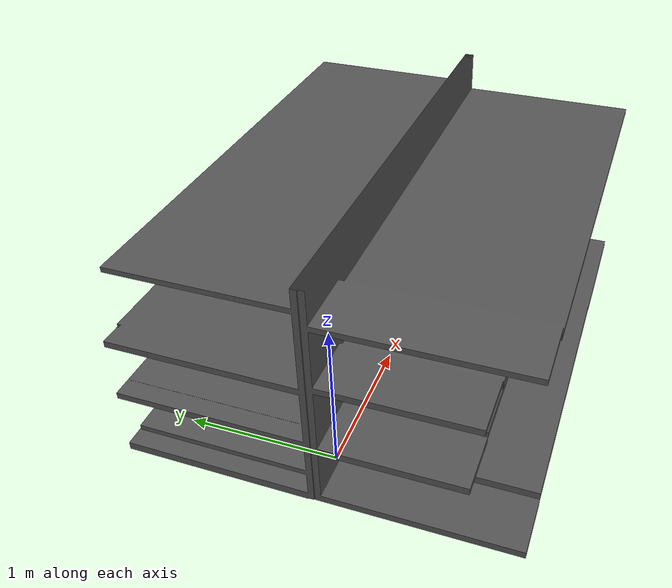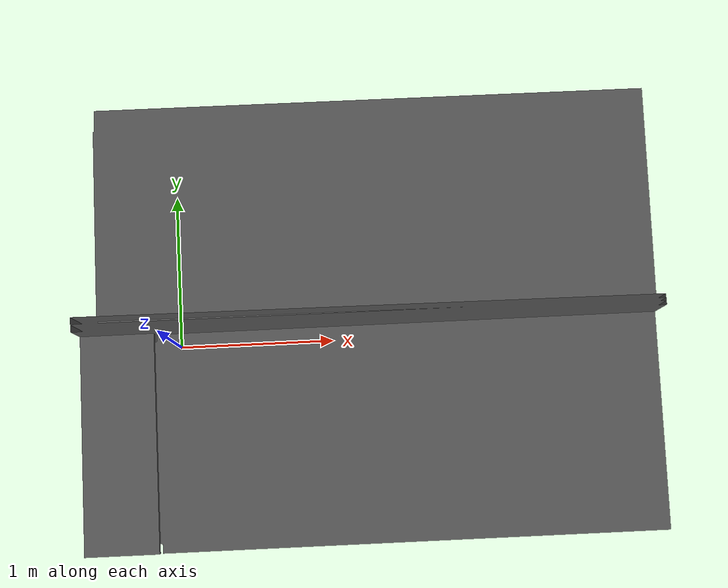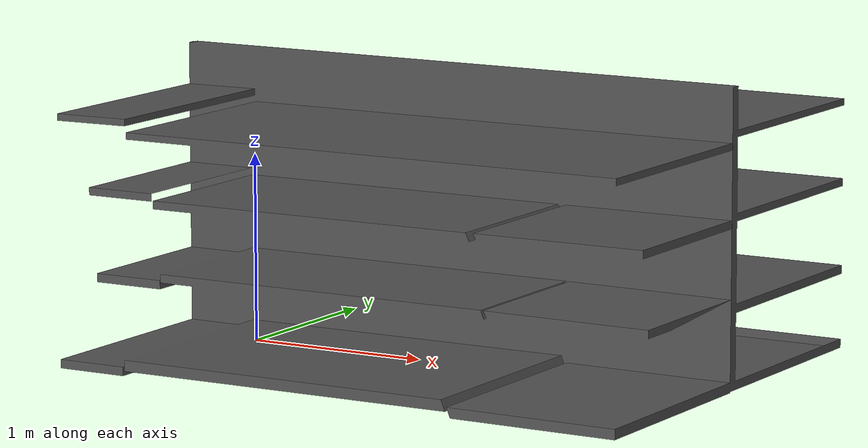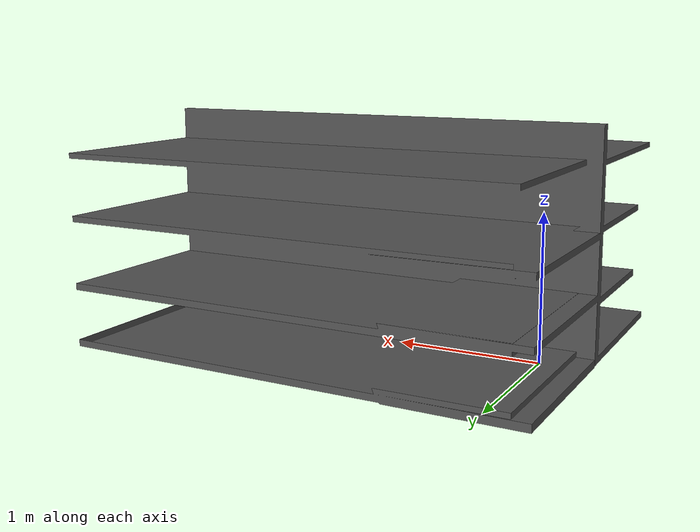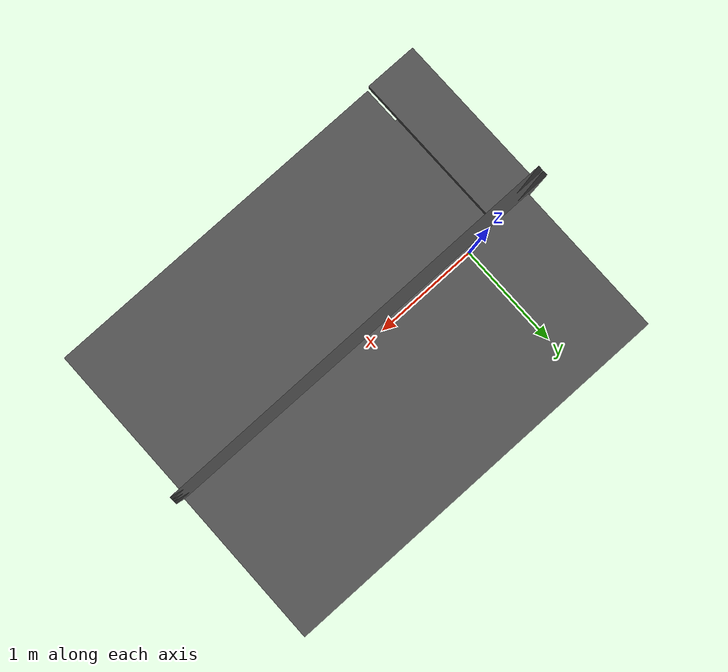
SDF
<?xml version='1.0'?>
<sdf version='1.6'>
  <model name='shelve'>
    <link name='link_1'>
      <visual name='visual'>
        <pose frame=''>0 0 0 0 0 0</pose>
        <geometry>
          <mesh>
            <uri>model://shelve/meshes/final_shelve.dae</uri>
            <scale>0.9 0.9 0.9</scale>
          </mesh>
        </geometry>
        <cast_shadows>0</cast_shadows>
        <transparency>0</transparency>
      </visual>

    </link>

    <static>1</static>
    <allow_auto_disable>1</allow_auto_disable>
  </model>
</sdf>
